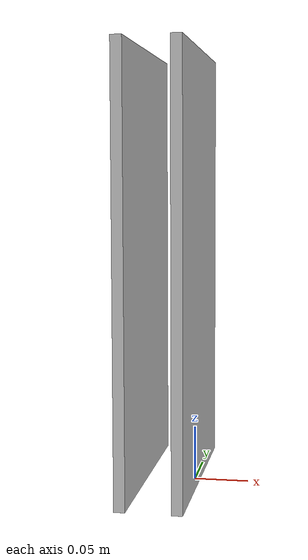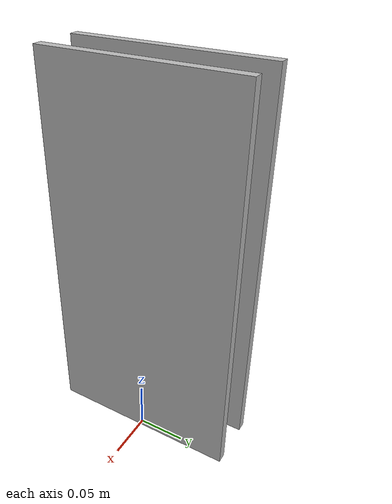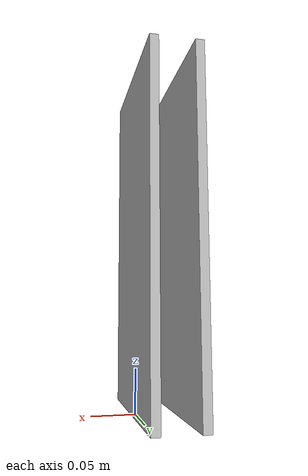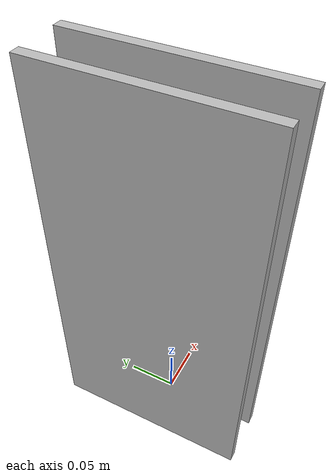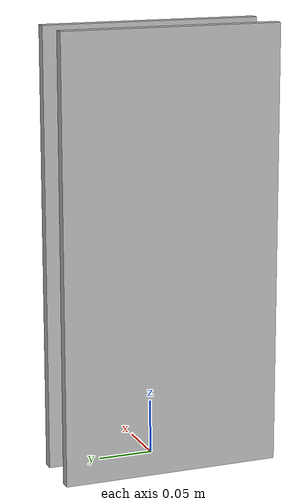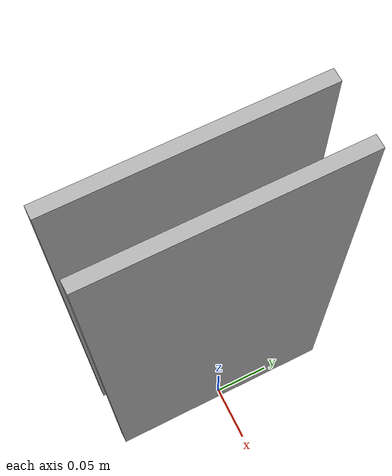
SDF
<?xml version="1.0" ?>
<sdf version="1.5">

<model name="teamH8Radar">
  <!-- Give the base link a unique name -->
  <link name="AWR1642BOOST">

    <!-- Offset the base by half the lenght of the cylinder -->
    <pose>0 0 0.2 1.5708 0 1.5708</pose>
      <inertial>
      <mass>1.2</mass>
      <inertia>
        <ixx>0.001087473</ixx>
        <iyy>0.001087473</iyy>
        <izz>0.001092437</izz>
        <ixy>0</ixy>
        <ixz>0</ixz>
        <iyz>0</iyz>
      </inertia>
    </inertial>
    <collision name="AWR1642BOOST_collision">
      <geometry>
        <box>
          <size> 0.2 0.4 0.01 </size>
        </box>
      </geometry>
    </collision>

    <!-- The visual is mostly a copy of the collision -->
    <visual name="AWR1642BOOST_visual">
      <geometry>
        <box>
          <size> 0.2 0.4 0.01 </size>
        </box>
      </geometry>
    </visual>

<!-- Add a ray sensor, and give it a name -->
<sensor type="ray" name="sensor">

  <!-- Position the ray sensor  -->
  <pose>0 0.15 0.06 -1.5708 4.7123889 0</pose>

  <!-- Enable visualization to see the rays in the GUI -->
  <visualize>true</visualize>

  <!-- Set the update rate of the sensor -->
  <update_rate>30</update_rate>
<ray>
  <noise>

    <!-- Guassian Noise -->
    <type> gaussian </type>
    <mean> 0.0 </mean>
    <stddev> 0.03 </stddev>

  </noise>

  <!-- The scan element contains the horizontal and vertical beams.
       We are leaving out the vertical beams for this tutorial. -->
  <scan>

    <!-- The horizontal beams -->
    <horizontal>
      <!-- The velodyne has 32 beams(samples) -->
      <samples>10</samples>

      <resolution>1</resolution>

      <!-- Minimum angle in radians -->
      <min_angle>-0.523599</min_angle>

      <!-- Maximum angle in radians -->
      <max_angle>0.523599</max_angle>
    </horizontal>
  </scan>

  <!-- Range defines characteristics of an individual beam -->
  <range>

    <!-- Minimum distance of the beam -->
    <min>0.0</min>

    <!-- Maximum distance of the beam -->
    <max>40</max>

    <!-- Linear resolution of the beam -->
    <resolution>0.05</resolution>
  </range>
</ray>
<controller:gazebo_ros_laser name="ros_ray_sensor_controller" plugin="libgazebo_ros_laser.so">
            <gaussianNoise>0.005</gaussianNoise>
            <alwaysOn>true</alwaysOn>
            <updateRate>30.0</updateRate>
            <topicName>ray_scan</topicName>
            <frameName>ray_model</frameName>
            <interface:laser name="ros_ray_sensor_iface" />
         </controller:gazebo_ros_laser>
</sensor>
  </link>

  <!-- Give the base link a unique name -->
  <link name="DCA1000EVM">

    <!-- offset to simulate the  -->
    <pose>-0.05 0 0.2 1.5708 0 1.5708</pose>
   <inertial>
     <mass>0.1</mass>
     <inertia>
       <ixx>0.000090623</ixx>
       <iyy>0.000090623</iyy>
       <izz>0.000091036</izz>
       <ixy>0</ixy>
       <ixz>0</ixz>
       <iyz>0</iyz>
     </inertia>
   </inertial>
    <collision name="DCA1000EVM_collision">
      <geometry>
        <box>
          <size> 0.2 0.4 0.01 </size>
        </box>
      </geometry>
    </collision>

    <!-- The visual is mostly a copy of the collision -->
    <visual name="DCA1000EVM_visual">
      <geometry>
        <box>
          <size> 0.2 0.4 0.01 </size>
        </box>
      </geometry>
    </visual>
  </link>

<!-- Joint to make the pluign happy, will work on removing this -->
<!-- Each joint must have a unique name -->
<joint type="revolute" name="joint">

  <!-- Position the joint at the bottom of the top link -->
  <pose>-2 0 0 0 0 0</pose>

  <!-- Use the base link as the parent of the joint -->
  <parent>DCA1000EVM</parent>

  <!-- Use the top link as the child of the joint -->
  <child>AWR1642BOOST</child>

  <!-- The axis defines the joint's degree of freedom -->
  <axis>

    <!-- Revolve around the z-axis -->
    <xyz>0 0 1</xyz>

    <!-- Limit refers to the range of motion of the joint -->
    <limit>

      <!-- Use a very large number to indicate a continuous revolution -->
      <lower>-10000000000000000</lower>
      <upper>10000000000000000</upper>
    </limit>
  </axis>
</joint>

</model>
</sdf>
